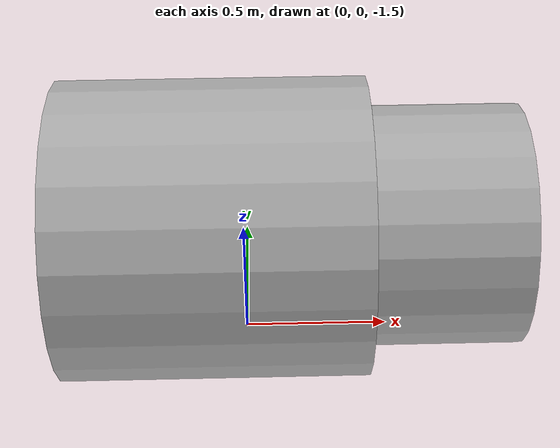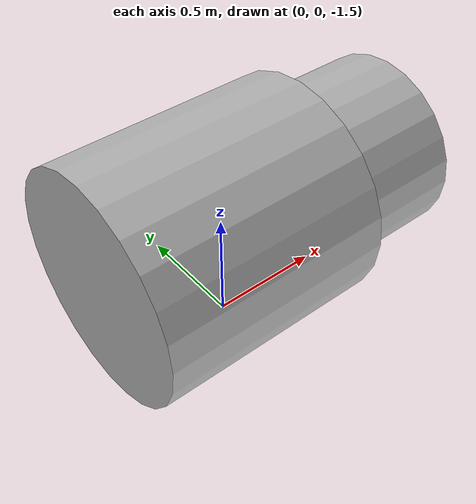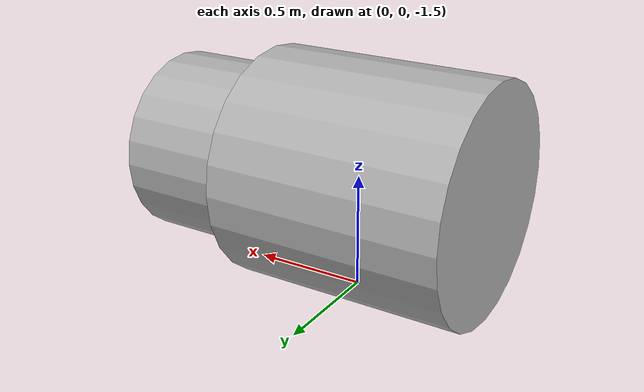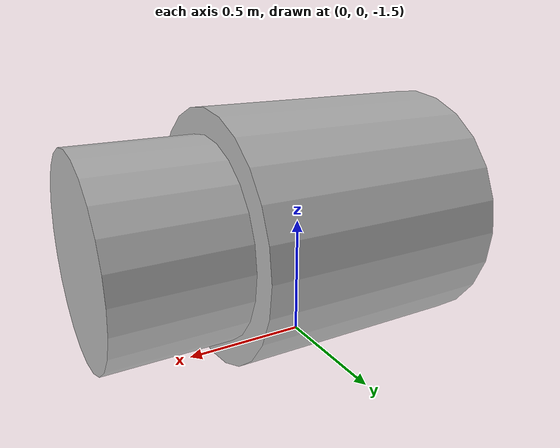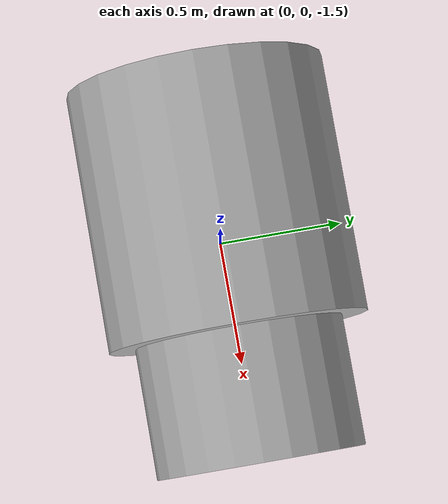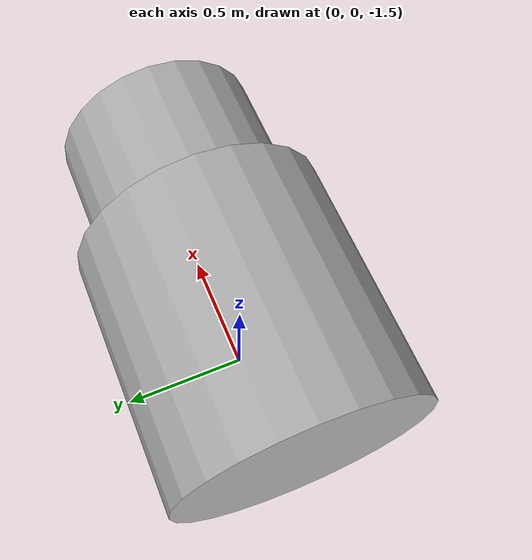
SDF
<sdf version='1.9'>
  <world name='empty'>
    <physics name='1ms' type='ignored'>
      <max_step_size>0.001</max_step_size>
      <real_time_factor>1</real_time_factor>
      <real_time_update_rate>1000</real_time_update_rate>
    </physics>
    <plugin name='ignition::gazebo::systems::Physics' filename='ignition-gazebo-physics-system'/>
    <plugin name='ignition::gazebo::systems::UserCommands' filename='ignition-gazebo-user-commands-system'/>
    <plugin name='ignition::gazebo::systems::SceneBroadcaster' filename='ignition-gazebo-scene-broadcaster-system'/>
    <plugin name='ignition::gazebo::systems::Contact' filename='ignition-gazebo-contact-system'/>
    <plugin name='ignition::gazebo::systems::Sensors' filename='ignition-gazebo-sensors-system'/>
    <gravity>0 0 0</gravity>
    <magnetic_field>6e-06 2.3e-05 -4.2e-05</magnetic_field>
    <atmosphere type='adiabatic'/>
    <scene>
      <ambient>0.4 0.4 0.4 1</ambient>
      <background>0.7 0.7 0.7 1</background>
      <shadows>true</shadows>
    </scene>
    <model name='vessel'>
      <pose>-0.0958 0 -1 0 1.57 0</pose>
      <model name='tissue'>
        <pose>0 0 0 0 0 0</pose>
        <link name='cylinder_link'>
          <inertial>
            <inertia>
              <ixx>0.14580000000000001</ixx>
              <ixy>0</ixy>
              <ixz>0</ixz>
              <iyy>0.14580000000000001</iyy>
              <iyz>0</iyz>
              <izz>0.125</izz>
            </inertia>
            <mass>1</mass>
            <pose>0 0 0 0 -0 0</pose>
          </inertial>
          <collision name='cylinder_collision'>
            <geometry>
              <cylinder>
                <radius>0.5</radius>
                <length>1</length>
              </cylinder>
            </geometry>
            <surface>
              <friction>
                <ode/>
              </friction>
              <bounce/>
              <contact/>
            </surface>
          </collision>
          <visual name='cylinder_visual'>
            <visibility_flags>2</visibility_flags>
            <geometry>
              <cylinder>
                <radius>0.5</radius>
                <length>1</length>
              </cylinder>
            </geometry>
            <material>
              <ambient>0.3 0.3 0.3 1</ambient>
              <diffuse>0.7 0.7 0.7 1</diffuse>
              <specular>1 1 1 1</specular>
            </material>
          </visual>
          <pose>0 0 0 0 0 0</pose>
          <enable_wind>false</enable_wind>
        </link>
        <static>false</static>
        <self_collide>false</self_collide>
      </model>
      <model name='nitinol'>
        <pose>0 0 0 0 0 0</pose>
        <link name='cylinder_link'>
          <inertial>
            <inertia>
              <ixx>0.14580000000000001</ixx>
              <ixy>0</ixy>
              <ixz>0</ixz>
              <iyy>0.14580000000000001</iyy>
              <iyz>0</iyz>
              <izz>0.125</izz>
            </inertia>
            <mass>1</mass>
            <pose>0 0 0 0 0 0</pose>
          </inertial>
          <collision name='cylinder_collision'>
            <geometry>
              <cylinder>
                <radius>0.40000000000000002</radius>
                <length>1</length>
              </cylinder>
            </geometry>
            <surface>
              <friction>
                <ode/>
              </friction>
              <bounce/>
              <contact/>
            </surface>
          </collision>
          <visual name='cylinder_visual'>
            <visibility_flags>4</visibility_flags>
            <geometry>
              <cylinder>
                <radius>0.40000000000000002</radius>
                <length>1</length>
              </cylinder>
            </geometry>
            <material>
              <ambient>0.3 0.3 0.3 1</ambient>
              <diffuse>0.7 0.7 0.7 1</diffuse>
              <specular>1 1 1 1</specular>
            </material>
          </visual>
          <pose>0 0 0.5 0 0 0</pose>
          <enable_wind>false</enable_wind>
        </link>
        <static>false</static>
        <self_collide>false</self_collide>
      </model>
      <static>false</static>
      <self_collide>false</self_collide>
    </model>
    <light name='sun' type='directional'>
      <pose>0 0 10 0 -0 0</pose>
      <cast_shadows>true</cast_shadows>
      <intensity>1</intensity>
      <direction>-0.5 0.1 -0.9</direction>
      <diffuse>0.8 0.8 0.8 1</diffuse>
      <specular>0.2 0.2 0.2 1</specular>
      <attenuation>
        <range>1000</range>
        <linear>0.01</linear>
        <constant>0.90000000000000002</constant>
        <quadratic>0.001</quadratic>
      </attenuation>
      <spot>
        <inner_angle>0</inner_angle>
        <outer_angle>0</outer_angle>
        <falloff>0</falloff>
      </spot>
    </light>
  </world>
</sdf>
